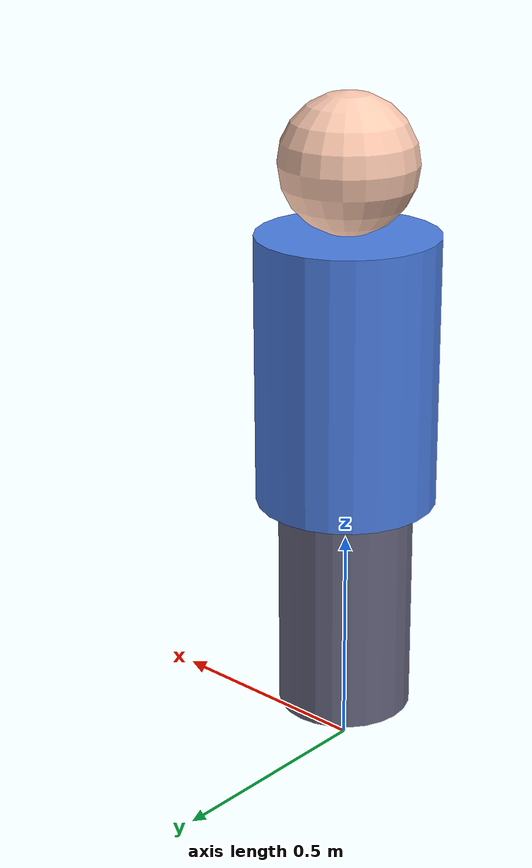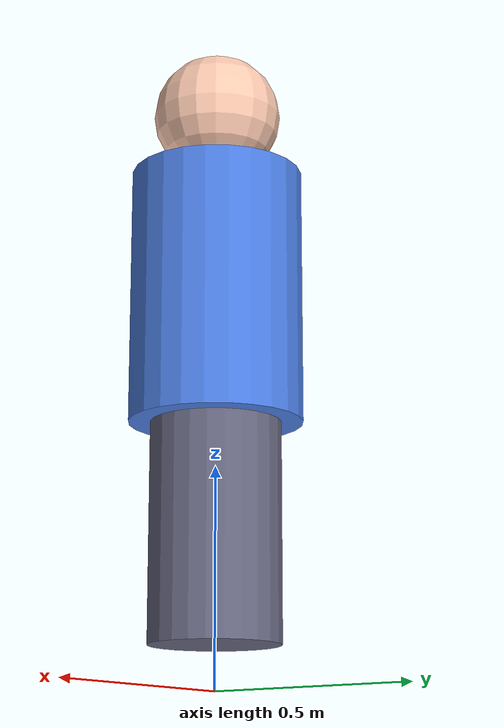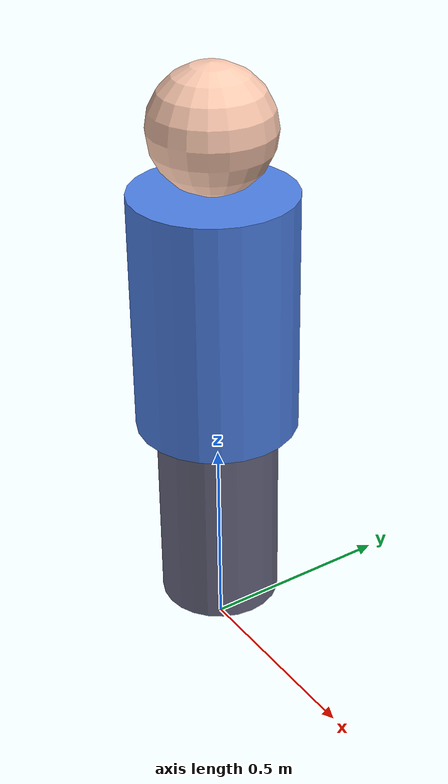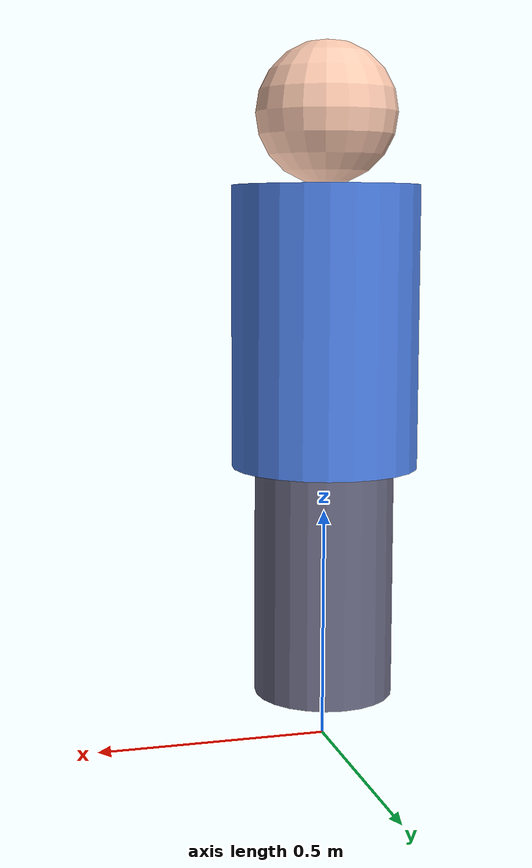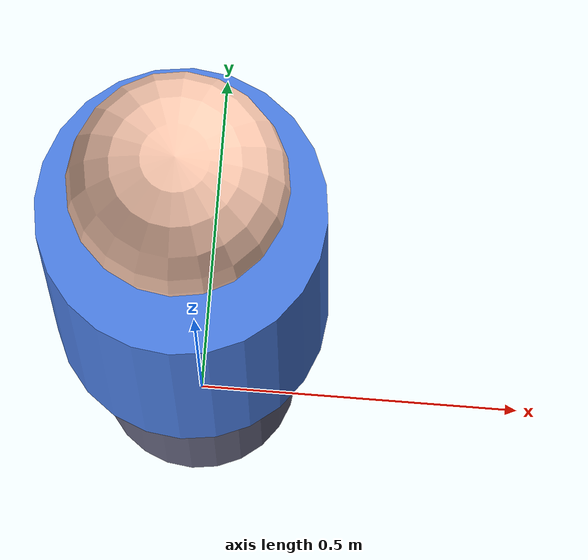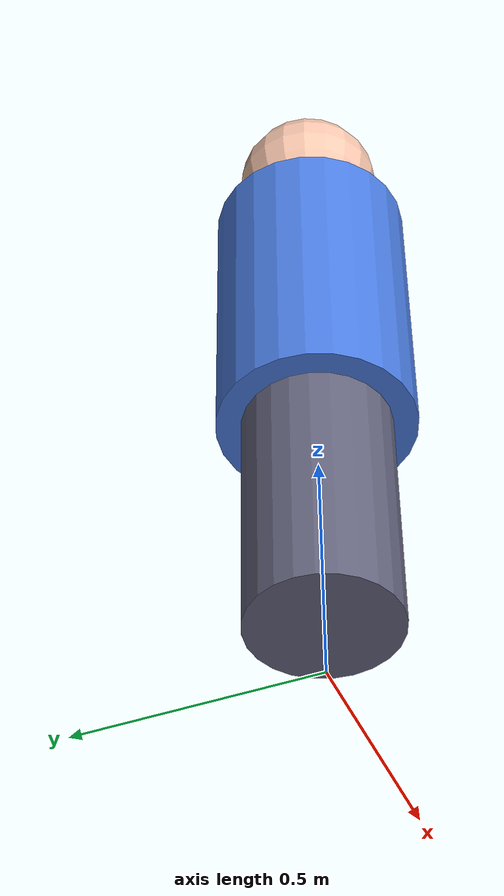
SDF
<?xml version="1.0" ?>
<sdf version="1.6">
  <model name="human_actor_static">
    <static>false</static>
    <link name="body">
      <pose>0 0 0.9 0 0 0</pose>
      <collision name="collision">
        <geometry>
          <cylinder>
            <radius>0.3</radius>
            <length>1.8</length>
          </cylinder>
        </geometry>
      </collision>
      <visual name="torso">
        <pose>0 0 0 0 0 0</pose>
        <geometry>
          <cylinder>
            <radius>0.2</radius>
            <length>0.6</length>
          </cylinder>
        </geometry>
        <material>
          <ambient>0.2 0.4 0.8 1</ambient>
          <diffuse>0.3 0.5 0.9 1</diffuse>
        </material>
      </visual>
      <visual name="head">
        <pose>0 0 0.45 0 0 0</pose>
        <geometry>
          <sphere>
            <radius>0.15</radius>
          </sphere>
        </geometry>
        <material>
          <ambient>0.9 0.7 0.6 1</ambient>
          <diffuse>1.0 0.8 0.7 1</diffuse>
        </material>
      </visual>
      <visual name="legs">
        <pose>0 0 -0.55 0 0 0</pose>
        <geometry>
          <cylinder>
            <radius>0.15</radius>
            <length>0.5</length>
          </cylinder>
        </geometry>
        <material>
          <ambient>0.3 0.3 0.4 1</ambient>
          <diffuse>0.4 0.4 0.5 1</diffuse>
        </material>
      </visual>
    </link>
  </model>
</sdf>
